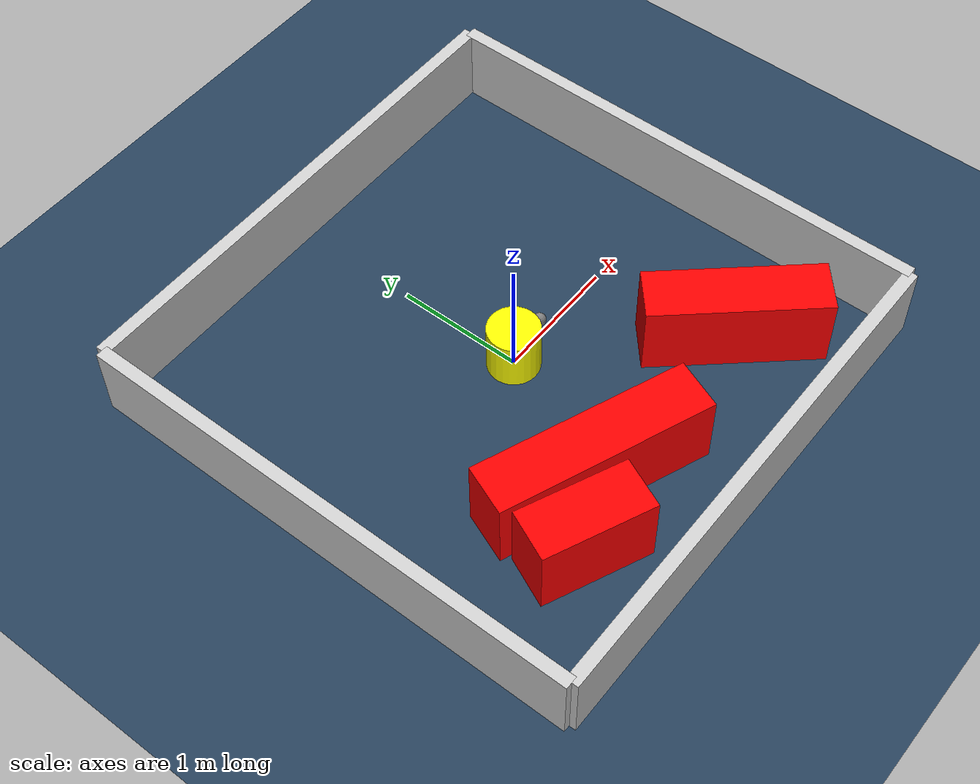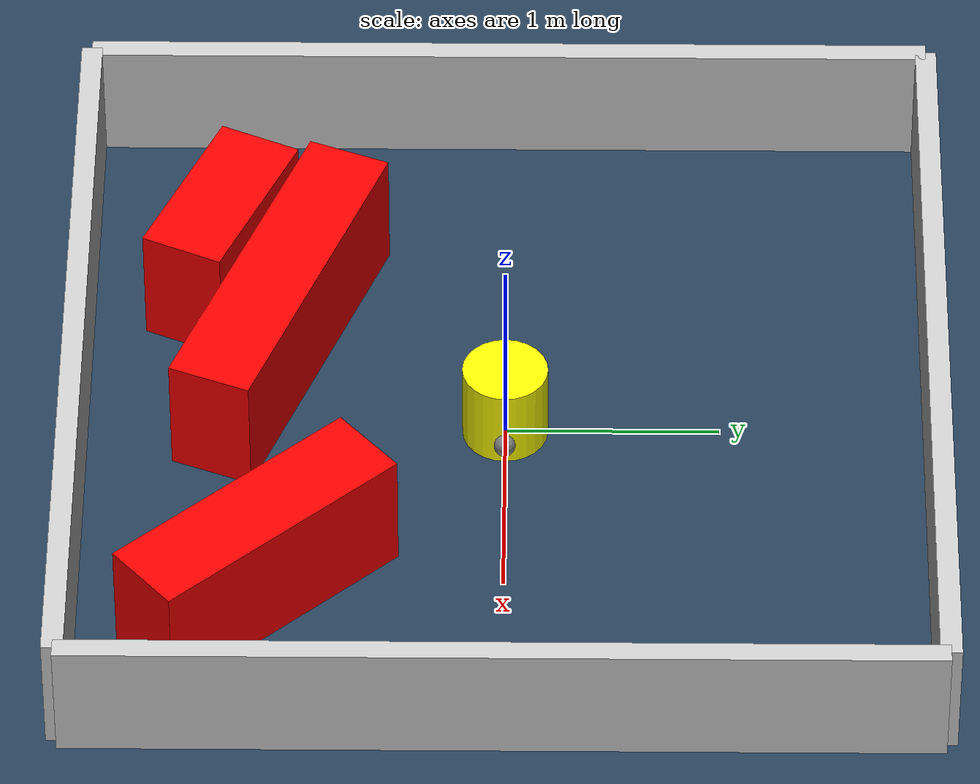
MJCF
<?xml version="1.0" ?>
<mujoco model="generated_environment">
  <option timestep="0.01" integrator="RK4" cone="elliptic"/>
  <default>
    <geom density="1"/>
  </default>
  <asset>
    <texture builtin="gradient" height="3072" rgb1="0.3 0.5 0.7" rgb2="0 0 0" type="skybox" width="512"/>
    <texture builtin="checker" height="300" mark="edge" markrgb="0.8 0.8 0.8" name="groundplane" rgb1="0.2 0.3 0.4" rgb2="0.1 0.2 0.3" type="2d" width="300"/>
    <material name="groundplane" reflectance="0.2" texrepeat="5 5" texture="groundplane" texuniform="true"/>
    <material name="robot" rgba="0.0 1.0 0.0 1"/>
  </asset>
  <worldbody>
    <light dir="0 0 -1" directional="true" pos="0 0 1.5"/>
    <geom condim="4" friction="1.0 0.005 0.001" material="groundplane" name="floor" size="0 0 0.05" type="plane"/>
    <body name="walls">
      <geom name="wall_1" condim="4" pos="-2.0 0.0 0.3" rgba="0.800000011920929 0.800000011920929 0.800000011920929 1.0" size="0.05 2.0 0.3" type="box"/>
      <geom name="wall_2" condim="4" pos="2.0 0.0 0.3" rgba="0.800000011920929 0.800000011920929 0.800000011920929 1.0" size="0.05 2.0 0.3" type="box"/>
      <geom name="wall_3" condim="4" pos="0.0 -2.0 0.3" rgba="0.800000011920929 0.800000011920929 0.800000011920929 1.0" size="2.0 0.05 0.3" type="box"/>
      <geom name="wall_4" condim="4" pos="0.0 2.0 0.3" rgba="0.800000011920929 0.800000011920929 0.800000011920929 1.0" size="2.0 0.05 0.3" type="box"/>
    </body>
    <body name="robot">
      <joint name="joint_x" type="slide" pos="0 0 0" axis="1 0 0"/>
      <joint name="joint_y" type="slide" pos="0 0 0" axis="0 1 0"/>
      <geom name="robot" type="sphere" pos="0.3 0.0 0.2" size="0.05" mass="5." friction="1.0 0.005 0.0001" condim="4" rgba="0.5 0.5 0.5 1.0"/>
      <site name="sensor_ball"/>
    </body>
    <body name="obstacle_movable_1">
      <geom name="obstacle_movable_1" condim="4" pos="0.0 0.0 0.2" euler="0 0 0.0" friction="1.0 0.005 0.001" rgba="1.0 1.0 0.0 1.0" size="0.2 0.2 0.0" type="cylinder" mass="0.1"/>
      <joint type="free"/>
    </body>
    <body name="obstacle_2_static">
      <geom name="obstacle_2_static" condim="4" pos="1.1191913028719995 -1.1197368817627973 0.3" euler="0 0 311.3203925585322" friction="1.0 0.005 0.001" rgba="1 0 0 1" size="0.6698626486691779 0.2 0.3" type="box"/>
    </body>
    <body name="obstacle_3_static">
      <geom name="obstacle_3_static" condim="4" pos="-0.4940233910252755 -1.0561436646404427 0.3" euler="0 0 158.4239418072124" friction="1.0 0.005 0.001" rgba="1 0 0 1" size="0.8356563259186554 0.2 0.3" type="box"/>
    </body>
    <body name="obstacle_4_static">
      <geom name="obstacle_4_static" condim="4" pos="-0.9756109007283662 -1.347323343174915 0.3" euler="0 0 336.00410085035645" friction="1.0 0.005 0.001" rgba="1 0 0 1" size="0.42853109440846965 0.2 0.3" type="box"/>
    </body>
  </worldbody>
  <actuator>
    <motor name="actuator_x" joint="joint_x" gear="1" ctrlrange="-1 1"/>
    <motor name="actuator_y" joint="joint_y" gear="1" ctrlrange="-1 1"/>
  </actuator>
</mujoco>
